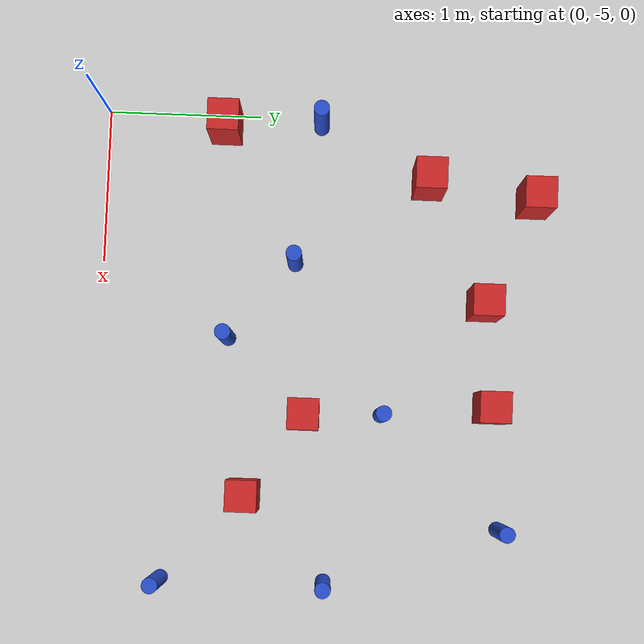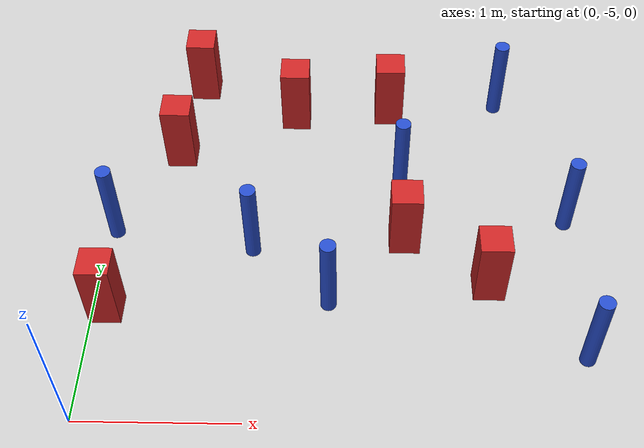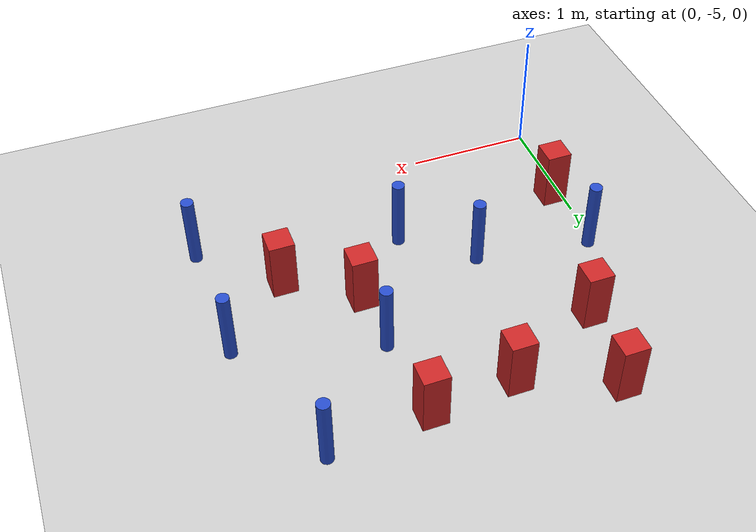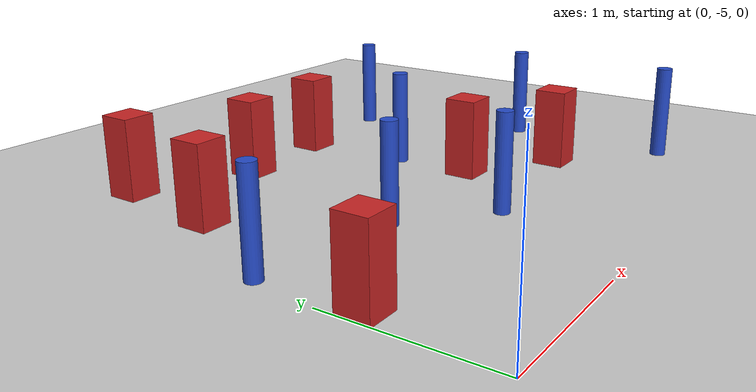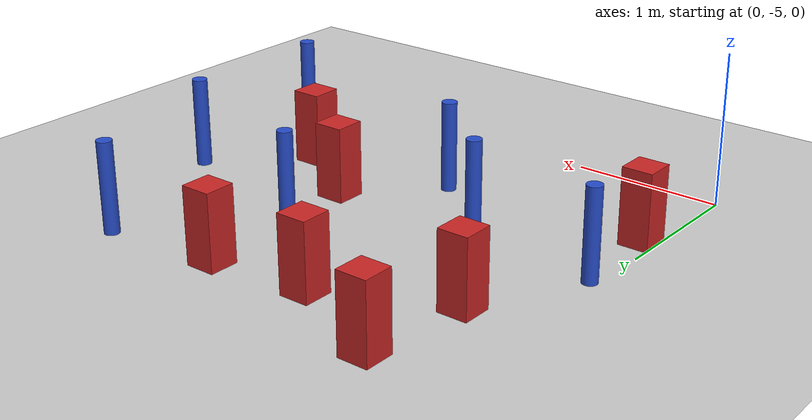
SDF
<sdf version="1.6">
 <world name="default">
  <model name="ground_plane">
   <static>1</static>
   <link name="link">
    <collision name="collision">
     <geometry><plane><normal>0 0 1</normal><size>100 100</size></plane></geometry>
     <surface><friction><ode><mu>100</mu><mu2>50</mu2></ode></friction></surface>
    </collision>
    <visual name="visual">
     <cast_shadows>0</cast_shadows>
     <geometry><plane><normal>0 0 1</normal><size>100 100</size></plane></geometry>
     <material>
      <ambient>1.0 1.0 1.0 1.0</ambient>
      <diffuse>0.8 0.8 0.8 1.0</diffuse>
      <specular>0.01 0.01 0.01 1.000000</specular>
     </material>
    </visual>
   </link>
  </model>
  <model name="square_post_obstacle51">
   <static>true</static>
   <pose>0.517012459447 -2.18822573347 8.22691968438e-08 7.2212513382e-06 -7.54495500217e-07 2.29674213826e-05</pose>
   <link name="link">
    <pose>0 0 0.25 0 -0 0</pose>
    <inertial>
     <mass>100</mass>
     <inertia>
      <ixx>0.166667</ixx>
      <ixy>0</ixy>
      <ixz>0</ixz>
      <iyy>0.166667</iyy>
      <iyz>0</iyz>
      <izz>0.166667</izz>
     </inertia>
    </inertial>
    <collision name="collision"><geometry><box><size>.2 .2 .5</size></box></geometry></collision>
    <visual name="visual">
     <geometry><box><size>.2 .2 .5</size></box></geometry>
     <material>
      <script><name>Gazebo/Red</name><uri>file://media/materials/scripts/gazebo.material</uri></script>
     </material>
    </visual>
   </link>
  </model>
  <model name="square_post_obstacle53">
   <static>true</static>
   <pose>1.88276804269 -2.43580149261 8.22691968438e-08 7.2212513382e-06 -7.54495500217e-07 2.29674213826e-05</pose>
   <link name="link">
    <pose>0 0 0.25 0 -0 0</pose>
    <inertial>
     <mass>100</mass>
     <inertia>
      <ixx>0.166667</ixx>
      <ixy>0</ixy>
      <ixz>0</ixz>
      <iyy>0.166667</iyy>
      <iyz>0</iyz>
      <izz>0.166667</izz>
     </inertia>
    </inertial>
    <collision name="collision"><geometry><box><size>.2 .2 .5</size></box></geometry></collision>
    <visual name="visual">
     <geometry><box><size>.2 .2 .5</size></box></geometry>
     <material>
      <script><name>Gazebo/Red</name><uri>file://media/materials/scripts/gazebo.material</uri></script>
     </material>
    </visual>
   </link>
  </model>
  <model name="square_post_obstacle54">
   <static>true</static>
   <pose>0.417672487069 -2.88179623451 8.22691968438e-08 7.22125133819e-06 -7.54495500217e-07 2.29674213826e-05</pose>
   <link name="link">
    <pose>0 0 0.25 0 -0 0</pose>
    <inertial>
     <mass>100</mass>
     <inertia>
      <ixx>0.166667</ixx>
      <ixy>0</ixy>
      <ixz>0</ixz>
      <iyy>0.166667</iyy>
      <iyz>0</iyz>
      <izz>0.166667</izz>
     </inertia>
    </inertial>
    <collision name="collision"><geometry><box><size>.2 .2 .5</size></box></geometry></collision>
    <visual name="visual">
     <geometry><box><size>.2 .2 .5</size></box></geometry>
     <material>
      <script><name>Gazebo/Red</name><uri>file://media/materials/scripts/gazebo.material</uri></script>
     </material>
    </visual>
   </link>
  </model>
  <model name="pole_obstacle66">
   <static>true</static>
   <pose>1.48015843513 -4.15615399807 2.88873142074e-08 -9.90536689852e-09 4.60219948989e-07 -1.2096599496e-07</pose>
   <link name="link">
    <pose>0 0 0.3 0 -0 0</pose>
    <inertial>
     <mass>1</mass>
     <inertia><ixx>0.145833</ixx><ixy>0</ixy><ixz>0</ixz><iyy>0.145833</iyy><iyz>0</iyz><izz>0.125</izz></inertia>
    </inertial>
    <collision name="collision">
     <geometry><cylinder><radius>0.05</radius><length>.6</length></cylinder></geometry>
    </collision>
    <visual name="visual">
     <geometry><cylinder><radius>0.05</radius><length>.6</length></cylinder></geometry>
     <material>
      <script><name>Gazebo/Blue</name><uri>file://media/materials/scripts/gazebo.material</uri></script>
     </material>
    </visual>
   </link>
  </model>
  <model name="square_post_obstacle99">
   <static>true</static>
   <pose>2.4942034704 -4.00868452656 8.22691968438e-08 7.2212513382e-06 -7.54495500217e-07 2.29674213826e-05</pose>
   <link name="link">
    <pose>0 0 0.25 0 -0 0</pose>
    <inertial>
     <mass>100</mass>
     <inertia>
      <ixx>0.166667</ixx>
      <ixy>0</ixy>
      <ixz>0</ixz>
      <iyy>0.166667</iyy>
      <iyz>0</iyz>
      <izz>0.166667</izz>
     </inertia>
    </inertial>
    <collision name="collision"><geometry><box><size>.2 .2 .5</size></box></geometry></collision>
    <visual name="visual">
     <geometry><box><size>.2 .2 .5</size></box></geometry>
     <material>
      <script><name>Gazebo/Red</name><uri>file://media/materials/scripts/gazebo.material</uri></script>
     </material>
    </visual>
   </link>
  </model>
  <model name="square_post_obstacle111">
   <static>true</static>
   <pose>0.0930668557078 -4.21701055112 8.22691968438e-08 7.2212513382e-06 -7.54495500217e-07 2.29674213826e-05</pose>
   <link name="link">
    <pose>0 0 0.25 0 -0 0</pose>
    <inertial>
     <mass>100</mass>
     <inertia>
      <ixx>0.166667</ixx>
      <ixy>0</ixy>
      <ixz>0</ixz>
      <iyy>0.166667</iyy>
      <iyz>0</iyz>
      <izz>0.166667</izz>
     </inertia>
    </inertial>
    <collision name="collision"><geometry><box><size>.2 .2 .5</size></box></geometry></collision>
    <visual name="visual">
     <geometry><box><size>.2 .2 .5</size></box></geometry>
     <material>
      <script><name>Gazebo/Red</name><uri>file://media/materials/scripts/gazebo.material</uri></script>
     </material>
    </visual>
   </link>
  </model>
  <model name="pole_obstacle127">
   <static>true</static>
   <pose>0.0577844461764 -3.5921833487 2.88873142074e-08 -9.9053669241e-09 4.60219948928e-07 -1.20965994988e-07</pose>
   <link name="link">
    <pose>0 0 0.3 0 -0 0</pose>
    <inertial>
     <mass>1</mass>
     <inertia><ixx>0.145833</ixx><ixy>0</ixy><ixz>0</ixz><iyy>0.145833</iyy><iyz>0</iyz><izz>0.125</izz></inertia>
    </inertial>
    <collision name="collision">
     <geometry><cylinder><radius>0.05</radius><length>.6</length></cylinder></geometry>
    </collision>
    <visual name="visual">
     <geometry><cylinder><radius>0.05</radius><length>.6</length></cylinder></geometry>
     <material>
      <script><name>Gazebo/Blue</name><uri>file://media/materials/scripts/gazebo.material</uri></script>
     </material>
    </visual>
   </link>
  </model>
  <model name="pole_obstacle148">
   <static>true</static>
   <pose>1.95069933836 -3.13874877879 2.88873142074e-08 -9.90536689941e-09 4.60219948987e-07 -1.20965994961e-07</pose>
   <link name="link">
    <pose>0 0 0.3 0 -0 0</pose>
    <inertial>
     <mass>1</mass>
     <inertia><ixx>0.145833</ixx><ixy>0</ixy><ixz>0</ixz><iyy>0.145833</iyy><iyz>0</iyz><izz>0.125</izz></inertia>
    </inertial>
    <collision name="collision">
     <geometry><cylinder><radius>0.05</radius><length>.6</length></cylinder></geometry>
    </collision>
    <visual name="visual">
     <geometry><cylinder><radius>0.05</radius><length>.6</length></cylinder></geometry>
     <material>
      <script><name>Gazebo/Blue</name><uri>file://media/materials/scripts/gazebo.material</uri></script>
     </material>
    </visual>
   </link>
  </model>
  <model name="pole_obstacle150">
   <static>true</static>
   <pose>3.04504724502 -3.47764768088 2.88873142074e-08 -9.90536690232e-09 4.6021994898e-07 -1.20965994968e-07</pose>
   <link name="link">
    <pose>0 0 0.3 0 -0 0</pose>
    <inertial>
     <mass>1</mass>
     <inertia><ixx>0.145833</ixx><ixy>0</ixy><ixz>0</ixz><iyy>0.145833</iyy><iyz>0</iyz><izz>0.125</izz></inertia>
    </inertial>
    <collision name="collision">
     <geometry><cylinder><radius>0.05</radius><length>.6</length></cylinder></geometry>
    </collision>
    <visual name="visual">
     <geometry><cylinder><radius>0.05</radius><length>.6</length></cylinder></geometry>
     <material>
      <script><name>Gazebo/Blue</name><uri>file://media/materials/scripts/gazebo.material</uri></script>
     </material>
    </visual>
   </link>
  </model>
  <model name="pole_obstacle162">
   <static>true</static>
   <pose>3.05500079615 -4.53784775167 2.88873142074e-08 -9.90536689859e-09 4.60219948989e-07 -1.20965994961e-07</pose>
   <link name="link">
    <pose>0 0 0.3 0 -0 0</pose>
    <inertial>
     <mass>1</mass>
     <inertia><ixx>0.145833</ixx><ixy>0</ixy><ixz>0</ixz><iyy>0.145833</iyy><iyz>0</iyz><izz>0.125</izz></inertia>
    </inertial>
    <collision name="collision">
     <geometry><cylinder><radius>0.05</radius><length>.6</length></cylinder></geometry>
    </collision>
    <visual name="visual">
     <geometry><cylinder><radius>0.05</radius><length>.6</length></cylinder></geometry>
     <material>
      <script><name>Gazebo/Blue</name><uri>file://media/materials/scripts/gazebo.material</uri></script>
     </material>
    </visual>
   </link>
  </model>
  <model name="square_post_obstacle163">
   <static>true</static>
   <pose>1.2109420744 -2.49696529483 8.22691968438e-08 7.2212513382e-06 -7.54495500217e-07 2.29674213826e-05</pose>
   <link name="link">
    <pose>0 0 0.25 0 -0 0</pose>
    <inertial>
     <mass>100</mass>
     <inertia>
      <ixx>0.166667</ixx>
      <ixy>0</ixy>
      <ixz>0</ixz>
      <iyy>0.166667</iyy>
      <iyz>0</iyz>
      <izz>0.166667</izz>
     </inertia>
    </inertial>
    <collision name="collision"><geometry><box><size>.2 .2 .5</size></box></geometry></collision>
    <visual name="visual">
     <geometry><box><size>.2 .2 .5</size></box></geometry>
     <material>
      <script><name>Gazebo/Red</name><uri>file://media/materials/scripts/gazebo.material</uri></script>
     </material>
    </visual>
   </link>
  </model>
  <model name="pole_obstacle173">
   <static>true</static>
   <pose>0.975182292199 -3.73265911353 2.88873142074e-08 -9.90536689802e-09 4.6021994899e-07 -1.2096599496e-07</pose>
   <link name="link">
    <pose>0 0 0.3 0 -0 0</pose>
    <inertial>
     <mass>1</mass>
     <inertia><ixx>0.145833</ixx><ixy>0</ixy><ixz>0</ixz><iyy>0.145833</iyy><iyz>0</iyz><izz>0.125</izz></inertia>
    </inertial>
    <collision name="collision">
     <geometry><cylinder><radius>0.05</radius><length>.6</length></cylinder></geometry>
    </collision>
    <visual name="visual">
     <geometry><cylinder><radius>0.05</radius><length>.6</length></cylinder></geometry>
     <material>
      <script><name>Gazebo/Blue</name><uri>file://media/materials/scripts/gazebo.material</uri></script>
     </material>
    </visual>
   </link>
  </model>
  <model name="square_post_obstacle166">
   <static>true</static>
   <pose>1.96876623187 -3.64040600259 8.22691968438e-08 7.2212513382e-06 -7.54495500217e-07 2.29674213826e-05</pose>
   <link name="link">
    <pose>0 0 0.25 0 -0 0</pose>
    <inertial>
     <mass>100</mass>
     <inertia>
      <ixx>0.166667</ixx>
      <ixy>0</ixy>
      <ixz>0</ixz>
      <iyy>0.166667</iyy>
      <iyz>0</iyz>
      <izz>0.166667</izz>
     </inertia>
    </inertial>
    <collision name="collision"><geometry><box><size>.2 .2 .5</size></box></geometry></collision>
    <visual name="visual">
     <geometry><box><size>.2 .2 .5</size></box></geometry>
     <material>
      <script><name>Gazebo/Red</name><uri>file://media/materials/scripts/gazebo.material</uri></script>
     </material>
    </visual>
   </link>
  </model>
  <model name="pole_obstacle207">
   <static>true</static>
   <pose>2.66765945719 -2.35688308799 2.88873142074e-08 -9.90536690232e-09 4.6021994898e-07 -1.20965994968e-07</pose>
   <link name="link">
    <pose>0 0 0.3 0 -0 0</pose>
    <inertial>
     <mass>1</mass>
     <inertia><ixx>0.145833</ixx><ixy>0</ixy><ixz>0</ixz><iyy>0.145833</iyy><iyz>0</iyz><izz>0.125</izz></inertia>
    </inertial>
    <collision name="collision">
     <geometry><cylinder><radius>0.05</radius><length>.6</length></cylinder></geometry>
    </collision>
    <visual name="visual">
     <geometry><cylinder><radius>0.05</radius><length>.6</length></cylinder></geometry>
     <material>
      <script><name>Gazebo/Blue</name><uri>file://media/materials/scripts/gazebo.material</uri></script>
     </material>
    </visual>
   </link>
  </model>
 </world>
</sdf>
